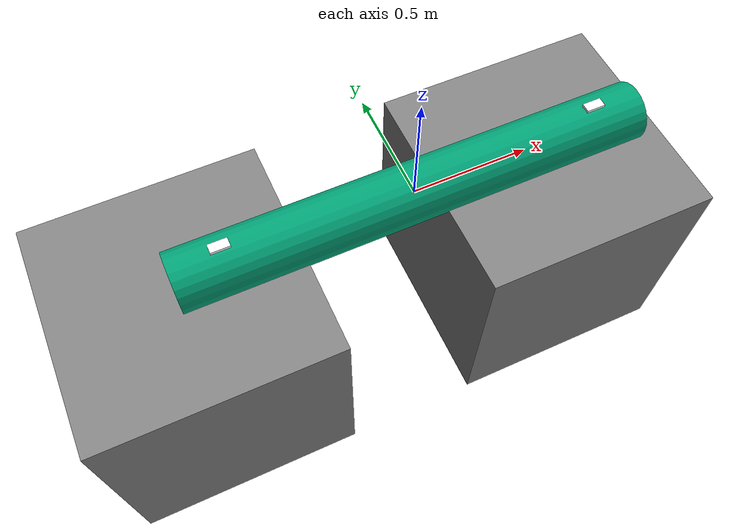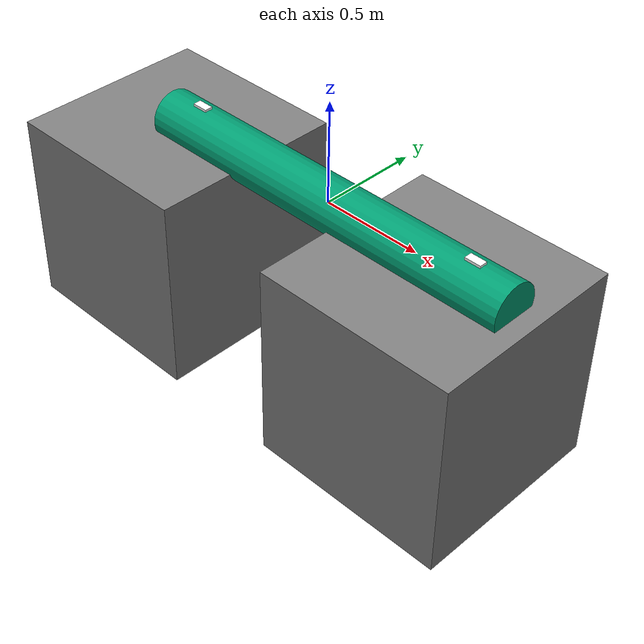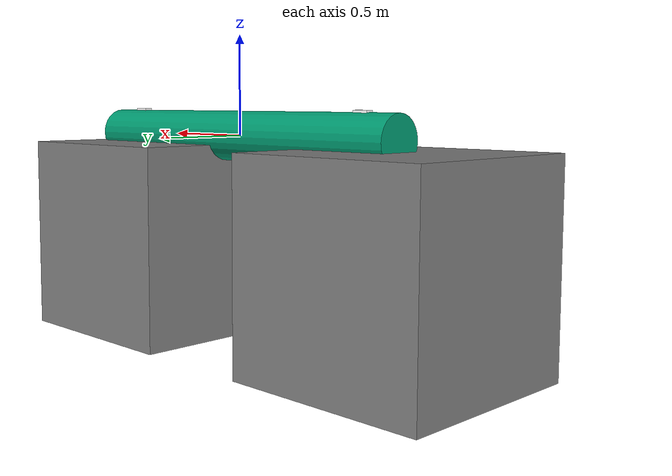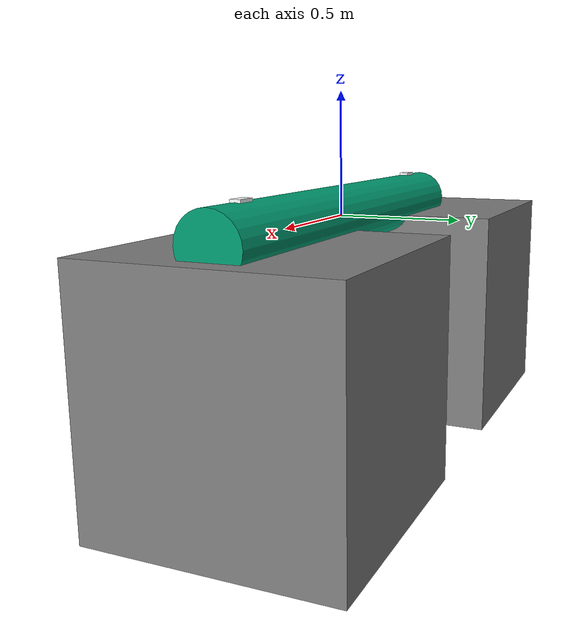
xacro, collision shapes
<?xml version="1.0" encoding="utf-8"?>
 <robot name="my_two_agv" xmlns:xacro="http://wiki.ros.org/xacro">

 <xacro:include filename='$(find full_vehicle_description)/urdf/robot1_six_force_sensor.xacro' />
 <xacro:include filename='$(find full_vehicle_description)/urdf/robot2_six_force_sensor.xacro' />
 <xacro:property name="log_radius" value="0.125" />
 <xacro:property name="log_length" value="2.016" />
 <xacro:property name="log_mass" value="15" />

<link name="robot1_base_link">
    <visual>
        <geometry>
            <box size="1 1 1"/>
        </geometry>
        <material name="gray">
            <color rgba="0.5 0.5 0.5 1"/>
        </material>
    </visual>
    <collision>
        <geometry>
            <box size="1 1 1"/>
        </geometry>
    </collision>
</link>

<link name="robot2_base_link">
    <visual>
        <geometry>
            <box size="1 1 1"/>
        </geometry>
        <material name="gray">
            <color rgba="0.5 0.5 0.5 1"/>
        </material>
    </visual>
    <collision>
        <geometry>
            <box size="1 1 1"/>
        </geometry>
    </collision>
</link>

 <link name='rod_link'>
    <visual>
        <origin xyz="0.0 0.0 0.0" rpy="0.0 1.5708 0.0"/>
        <geometry>
            <cylinder radius="${log_radius}" length="${log_length}"/>
        </geometry>
    </visual>
    <collision>
        <origin xyz="0.0 0.0 0.0" rpy="0.0 1.5708 0.0"/>
        <geometry>
            <cylinder radius="${log_radius}" length="${log_length}"/>
        </geometry>
    </collision>
    <inertial>
        <mass value="${log_mass}"/>
        <origin xyz="0.0 0.0 0.0" rpy="0.0 0 0.0"/>
        <inertia ixx="${log_mass*(3*log_radius*log_radius+log_length*log_length)/12}" ixy="0.0" ixz="0.0" iyy="${log_mass*(3*log_radius*log_radius+log_length*log_length)/12}" iyz="0.0" izz="${log_mass*log_radius*log_radius/2}"/>

    </inertial>
  </link>
  <joint name='log_2_robot1_fixed_hua_kuai_joint' type='fixed'>
    <origin xyz="-0.8 0.0 ${log_radius}" rpy="0.0 0.0 0.0"/>
    <parent link="rod_link"/>
    <child link="robot1_fixed_hua_kuai_link"/>
  </joint>
  <joint name='log_2_robot2_fixed_hua_kuai_joint' type='fixed'>
    <origin xyz="0.8 0.0 ${log_radius}" rpy="0.0 0.0 0.0"/>
    <parent link="rod_link"/>
    <child link="robot2_fixed_hua_kuai_link"/>
  </joint>

  </robot>

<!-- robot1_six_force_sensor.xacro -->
<robot name="my_six_force_robot1"  xmlns:xacro="http://www.ros.org/wiki/xacro">
  <link name="robot1_six_force_sensor_link">
    <inertial>
      <mass value="10"/>
      <inertia ixx="0.0036400000000000004" ixy="0" ixz="0" iyy="0.0036400000000000004" iyz="0" izz="0.00578"/>
    </inertial>
    <visual>
      <origin rpy="0 0 0" xyz="0 0 0"/>
      <geometry>
        <mesh filename="package://full_vehicle_description/meshes/six_force_sensor_link.STL"/>
      </geometry>
      <material name="">
        <color rgba="1 1 1 1"/>
      </material>
    </visual>
    <collision>
      <origin rpy="0 0 0" xyz="0 0 0"/>
      <geometry>
        <cylinder length="0.03" radius="0.034"/>
      </geometry>
    </collision>
  </link>
  <joint name="robot1_six_force_sensor_2_base_joint" type="fixed">
    <origin rpy="0 0 0" xyz="-0.2065 0 -0.54995"/>
    <parent link="robot1_six_force_sensor_link"/>
    <child link="robot1_base_link"/>
    <axis xyz="0 0 0"/>
  </joint>
  <link name="robot1_zhou_cheng_link">
    <inertial>
      <mass value="10"/>
      <inertia ixx="0.0036400000000000004" ixy="0" ixz="0" iyy="0.0036400000000000004" iyz="0" izz="0.00578"/>
    </inertial>
    <visual>
      <origin rpy="0 0 0" xyz="0 0 0"/>
      <geometry>
        <mesh filename="package://full_vehicle_description/meshes/zhou_cheng_link.STL"/>
      </geometry>
      <material name="">
        <color rgba="0.792156862745098 0.819607843137255 0.933333333333333 1"/>
      </material>
    </visual>
    <collision>
      <origin rpy="0 0 0" xyz="0 0 0"/>
      <geometry>
        <cylinder length="0.03" radius="0.034"/>
      </geometry>
    </collision>
  </link>
  <joint name="robot1_zhou_cheng_2_six_force_sensor_joint" type="fixed">
    <origin rpy="0 0 0" xyz="0 0 -0.0350000000000001"/>
    <parent link="robot1_zhou_cheng_link"/>
    <child link="robot1_six_force_sensor_link"/>
    <axis xyz="0 0 0"/>
  </joint>
  <link name="robot1_hua_tai_link">
    <inertial>
      <mass value="10"/>
      <inertia ixx="0.03585416666666667" ixy="0" ixz="0" iyy="0.03466666666666667" iyz="0" izz="0.0038541666666666668"/>
    </inertial>
    <visual>
      <origin rpy="0 0 0" xyz="0 0 0"/>
      <geometry>
        <mesh filename="package://full_vehicle_description/meshes/hua_tai_link.STL"/>
      </geometry>
      <material name="">
        <color rgba="0.792156862745098 0.819607843137255 0.933333333333333 1"/>
      </material>
    </visual>
    <collision>
      <origin rpy="0 0 0" xyz="0 0 0"/>
      <geometry>
        <box size="0.2 0.04 0.055"/>
      </geometry>
    </collision>
  </link>
  <joint name="robot1_hua_tai_2_zhou_cheng_joint" type="continuous">
    <dynamics friction="0.01"/>
    <origin rpy="0 0 0" xyz="0 0 -0.05005"/>
    <parent link="robot1_hua_tai_link"/>
    <child link="robot1_zhou_cheng_link"/>
    <axis xyz="0 0 -1"/>
  </joint>
  <joint name="robot1_fixed_hua_kuai_2_hua_tai_joint" type="prismatic">
    <dynamics friction="0.01"/>
    <origin rpy="0 0 0" xyz="0.007354 5E-05 -0.0355"/>
    <parent link="robot1_fixed_hua_kuai_link"/>
    <child link="robot1_hua_tai_link"/>
    <axis xyz="1 0 0"/>
    <limit effort="50" lower="-0.05" upper="0.05" velocity="1"/>
  </joint>
  <link name="robot1_fixed_hua_kuai_link">
    <inertial>
      <mass value="10"/>
      <inertia ixx="0.005666666666666667" ixy="0" ixz="0" iyy="0.006666666666666667" iyz="0" izz="0.0016666666666666668"/>
    </inertial>
    <visual>
      <origin rpy="0 0 0" xyz="0 0 0"/>
      <geometry>
        <mesh filename="package://full_vehicle_description/meshes/fixed_hua_kuai_link.STL"/>
      </geometry>
      <material name="">
        <color rgba="1 1 1 1"/>
      </material>
    </visual>
    <collision>
      <origin rpy="0 0 0" xyz="0 0 0"/>
      <geometry>
        <box size="0.08 0.04 0.02"/>
      </geometry>
    </collision>
  </link>
    <gazebo>
  <plugin name="robot1_ft_sensor" filename="libgazebo_ros_ft_sensor.so">
        <update_rate>30</update_rate>
        <topicName>/robot1_ft_sensor</topicName>
        <jointName>robot1_hua_tai_2_zhou_cheng_joint</jointName>
  </plugin>
  </gazebo>
</robot>

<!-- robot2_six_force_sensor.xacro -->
<robot name="my_six_force_robot2" xmlns:xacro="http://wiki.ros.org/xacro">
  <link name="robot2_six_force_sensor_link">
    <inertial>
      <mass value="10"/>
      <inertia ixx="0.0036400000000000004" ixy="0" ixz="0" iyy="0.0036400000000000004" iyz="0" izz="0.00578"/>
    </inertial>
    <visual>
      <origin rpy="0 0 0" xyz="0 0 0"/>
      <geometry>
        <mesh filename="package://full_vehicle_description/meshes/six_force_sensor_link.STL"/>
      </geometry>
      <material name="">
        <color rgba="1 1 1 1"/>
      </material>
    </visual>
    <collision>
      <origin rpy="0 0 0" xyz="0 0 0"/>
      <geometry>
        <cylinder length="0.03" radius="0.034"/>
      </geometry>
    </collision>
  </link>
  <joint name="robot2_six_force_sensor_2_base_joint" type="fixed">
    <origin rpy="0 0 0" xyz="-0.2065 0 -0.54995"/>
    <parent link="robot2_six_force_sensor_link"/>
    <child link="robot2_base_link"/>
    <axis xyz="0 0 0"/>
  </joint>
  <link name="robot2_zhou_cheng_link">
    <inertial>
      <mass value="10"/>
      <inertia ixx="0.0036400000000000004" ixy="0" ixz="0" iyy="0.0036400000000000004" iyz="0" izz="0.00578"/>
    </inertial>
    <visual>
      <origin rpy="0 0 0" xyz="0 0 0"/>
      <geometry>
        <mesh filename="package://full_vehicle_description/meshes/zhou_cheng_link.STL"/>
      </geometry>
      <material name="">
        <color rgba="0.792156862745098 0.819607843137255 0.933333333333333 1"/>
      </material>
    </visual>
    <collision>
      <origin rpy="0 0 0" xyz="0 0 0"/>
      <geometry>
        <cylinder length="0.03" radius="0.034"/>
      </geometry>
    </collision>
  </link>
  <joint name="robot2_zhou_cheng_2_six_force_sensor_joint" type="fixed">
    <origin rpy="0 0 0" xyz="0 0 -0.0350000000000001"/>
    <parent link="robot2_zhou_cheng_link"/>
    <child link="robot2_six_force_sensor_link"/>
    <axis xyz="0 0 0"/>
  </joint>
  <link name="robot2_hua_tai_link">
    <inertial>
      <mass value="10"/>
      <inertia ixx="0.03585416666666667" ixy="0" ixz="0" iyy="0.03466666666666667" iyz="0" izz="0.0038541666666666668"/>
    </inertial>
    <visual>
      <origin rpy="0 0 0" xyz="0 0 0"/>
      <geometry>
        <mesh filename="package://full_vehicle_description/meshes/hua_tai_link.STL"/>
      </geometry>
      <material name="">
        <color rgba="0.792156862745098 0.819607843137255 0.933333333333333 1"/>
      </material>
    </visual>
    <collision>
      <origin rpy="0 0 0" xyz="0 0 0"/>
      <geometry>
        <box size="0.2 0.04 0.055"/>
      </geometry>
    </collision>
  </link>
  <joint name="robot2_hua_tai_2_zhou_cheng_joint" type="continuous">
    <dynamics friction="0.01"/>
    <origin rpy="0 0 0" xyz="0 0 -0.05005"/>
    <parent link="robot2_hua_tai_link"/>
    <child link="robot2_zhou_cheng_link"/>
    <axis xyz="0 0 -1"/>
  </joint>
  <joint name="robot2_fixed_hua_kuai_2_hua_tai_joint" type="prismatic">
    <dynamics friction="0.01"/>
    <origin rpy="0 0 0" xyz="0.007354 5E-05 -0.0355"/>
    <parent link="robot2_fixed_hua_kuai_link"/>
    <child link="robot2_hua_tai_link"/>
    <axis xyz="1 0 0"/>
    <limit effort="50" lower="-0.05" upper="0.05" velocity="1"/>
  </joint>
  <link name="robot2_fixed_hua_kuai_link">
    <inertial>
      <mass value="10"/>
      <inertia ixx="0.005666666666666667" ixy="0" ixz="0" iyy="0.006666666666666667" iyz="0" izz="0.0016666666666666668"/>
    </inertial>
    <visual>
      <origin rpy="0 0 0" xyz="0 0 0"/>
      <geometry>
        <mesh filename="package://full_vehicle_description/meshes/fixed_hua_kuai_link.STL"/>
      </geometry>
      <material name="">
        <color rgba="1 1 1 1"/>
      </material>
    </visual>
    <collision>
      <origin rpy="0 0 0" xyz="0 0 0"/>
      <geometry>
        <box size="0.08 0.04 0.02"/>
      </geometry>
    </collision>
  </link>
    <gazebo>
  <plugin name="robot2_ft_sensor" filename="libgazebo_ros_ft_sensor.so">
        <update_rate>30</update_rate>
        <topicName>/robot2_ft_sensor</topicName>
        <jointName>robot2_hua_tai_2_zhou_cheng_joint</jointName>
  </plugin>
  </gazebo>
</robot>
